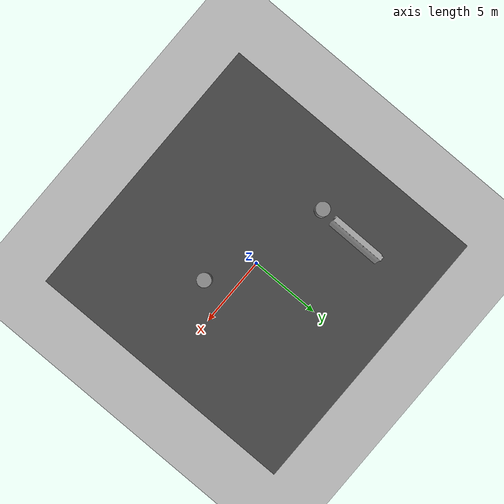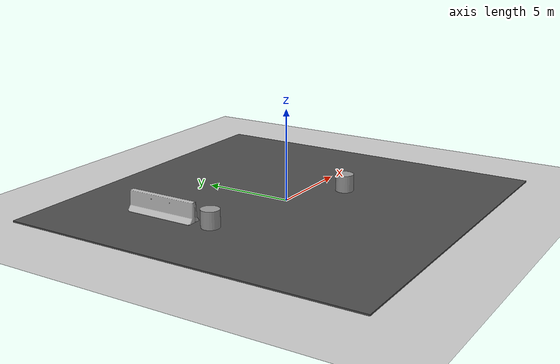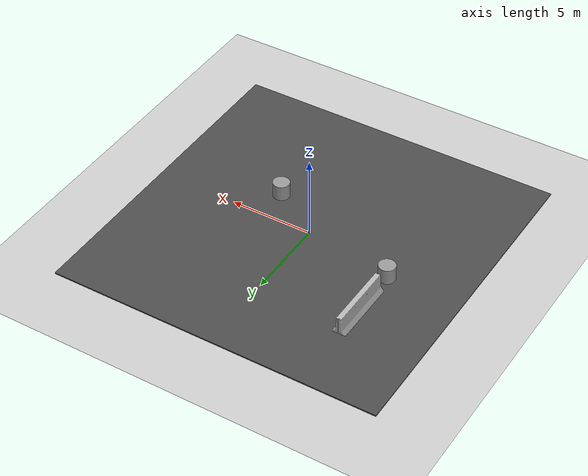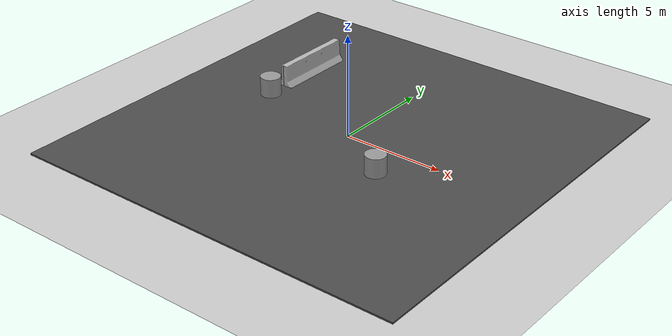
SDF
<sdf version="1.6">
 <world name="default">
  <light name="sun" type="directional">
   <cast_shadows>0</cast_shadows>
   <pose>0 0 10 0 -0 0</pose>
   <diffuse>0.8 0.8 0.8 1</diffuse>
   <specular>0.2 0.2 0.2 1</specular>
   <attenuation>
    <range>1000</range>
    <constant>0.9</constant>
    <linear>0.01</linear>
    <quadratic>0.001</quadratic>
   </attenuation>
   <direction>-0.5 0.1 -0.9</direction>
  </light>
  <model name="ground_plane">
   <static>1</static>
   <link name="link">
    <collision name="collision">
     <geometry><plane><normal>0 0 1</normal><size>100 100</size></plane></geometry>
     <surface><friction><ode><mu>100</mu><mu2>50</mu2></ode></friction></surface>
    </collision>
    <visual name="visual">
     <cast_shadows>0</cast_shadows>
     <geometry><plane><normal>0 0 1</normal><size>100 100</size></plane></geometry>
     <material>
      <script><uri>file://media/materials/scripts/gazebo.material</uri><name>Gazebo/Grey</name></script>
     </material>
    </visual>
   </link>
  </model>
  <gravity>0 0 -9.8</gravity>
  <magnetic_field>6e-06 2.3e-05 -4.2e-05</magnetic_field>
  <atmosphere type="adiabatic"/>
  <physics name="default_physics" default="0" type="ode">
   <max_step_size>0.001</max_step_size>
   <real_time_factor>1</real_time_factor>
   <real_time_update_rate>1000</real_time_update_rate>
  </physics>
  <scene><ambient>0.4 0.4 0.4 1</ambient><background>0.7 0.7 0.7 1</background><shadows>0</shadows></scene>
  <spherical_coordinates>
   <surface_model>EARTH_WGS84</surface_model>
   <latitude_deg>0</latitude_deg>
   <longitude_deg>0</longitude_deg>
   <elevation>0</elevation>
   <heading_deg>0</heading_deg>
  </spherical_coordinates>
  <light name="user_spot_light_0" type="spot">
   <pose>0.007443 -6.99038 1 0 -0 0</pose>
   <diffuse>0.5 0.5 0.5 1</diffuse>
   <specular>0.1 0.1 0.1 1</specular>
   <direction>0 0 -1</direction>
   <attenuation>
    <range>20</range>
    <constant>0.5</constant>
    <linear>0.01</linear>
    <quadratic>0.001</quadratic>
   </attenuation>
   <cast_shadows>0</cast_shadows>
   <spot><inner_angle>0.6</inner_angle><outer_angle>1</outer_angle><falloff>1</falloff></spot>
  </light>
  <light name="user_spot_light_1" type="spot">
   <pose>-0.012876 7.00777 1 0 -0 0</pose>
   <diffuse>0.5 0.5 0.5 1</diffuse>
   <specular>0.1 0.1 0.1 1</specular>
   <direction>0 0 -1</direction>
   <attenuation>
    <range>20</range>
    <constant>0.5</constant>
    <linear>0.01</linear>
    <quadratic>0.001</quadratic>
   </attenuation>
   <cast_shadows>0</cast_shadows>
   <spot><inner_angle>0.6</inner_angle><outer_angle>1</outer_angle><falloff>1</falloff></spot>
  </light>
  <model name="unit_cylinder">
   <pose>3.03482 -1.91032 0.5 0 -0 0</pose>
   <link name="link">
    <inertial>
     <mass>1</mass>
     <inertia><ixx>0.145833</ixx><ixy>0</ixy><ixz>0</ixz><iyy>0.145833</iyy><iyz>0</iyz><izz>0.125</izz></inertia>
    </inertial>
    <collision name="collision">
     <geometry><cylinder><radius>0.5</radius><length>1</length></cylinder></geometry>
    </collision>
    <visual name="visual">
     <geometry><cylinder><radius>0.5</radius><length>1</length></cylinder></geometry>
     <material>
      <script><name>Gazebo/Grey</name><uri>file://media/materials/scripts/gazebo.material</uri></script>
     </material>
    </visual>
   </link>
  </model>
  <model name="unit_cylinder_0">
   <pose>-5.5016 1.00927 0.5 0 -0 0</pose>
   <link name="link">
    <inertial>
     <mass>1</mass>
     <inertia><ixx>0.145833</ixx><ixy>0</ixy><ixz>0</ixz><iyy>0.145833</iyy><iyz>0</iyz><izz>0.125</izz></inertia>
    </inertial>
    <collision name="collision">
     <geometry><cylinder><radius>0.5</radius><length>1</length></cylinder></geometry>
    </collision>
    <visual name="visual">
     <geometry><cylinder><radius>0.5</radius><length>1</length></cylinder></geometry>
     <material>
      <script><name>Gazebo/Grey</name><uri>file://media/materials/scripts/gazebo.material</uri></script>
     </material>
    </visual>
   </link>
  </model>
  <model name="jersey_barrier">
   <static>1</static>
   <link name="link">
    <visual name="visual">
     <geometry><mesh><uri>model://jersey_barrier/meshes/jersey_barrier.dae</uri></mesh></geometry>
    </visual>
    <collision name="upright">
     <pose>0 0 0.5715 0 -0 0</pose>
     <geometry><box><size>4.06542 0.3063 1.143</size></box></geometry>
    </collision>
    <collision name="base">
     <pose>0 0 0.032258 0 -0 0</pose>
     <geometry><box><size>4.06542 0.8107 0.064516</size></box></geometry>
    </collision>
    <collision name="base2">
     <pose>0 0 0.1 0 -0 0</pose>
     <geometry><box><size>4.06542 0.65 0.1</size></box></geometry>
    </collision>
    <collision name="base3">
     <pose>0 0 0.2 0 -0 0</pose>
     <geometry><box><size>4.06542 0.5 0.1</size></box></geometry>
    </collision>
    <collision name="left-angle">
     <pose>0 -0.224 0.2401 0.9 -0 0</pose>
     <geometry><box><size>4.06542 0.5 0.064516</size></box></geometry>
    </collision>
    <collision name="right-angle">
     <pose>0 0.224 0.2401 -0.9 0 0</pose>
     <geometry><box><size>4.06542 0.5 0.064516</size></box></geometry>
    </collision>
   </link>
   <pose>-5.48416 4.01558 0 0 -0 1.56547</pose>
  </model>
  <model name="asphalt_plane">
   <static>1</static>
   <link name="link">
    <collision name="collision"><geometry><box><size>20 20 0.1</size></box></geometry></collision>
    <visual name="visual">
     <cast_shadows>0</cast_shadows>
     <geometry><box><size>20 20 0.1</size></box></geometry>
     <material>
      <script>
       <uri>model://asphalt_plane/materials/scripts</uri>
       <uri>model://asphalt_plane/materials/textures</uri>
       <name>vrc/asphalt</name>
      </script>
     </material>
    </visual>
   </link>
  </model>
 </world>
</sdf>
